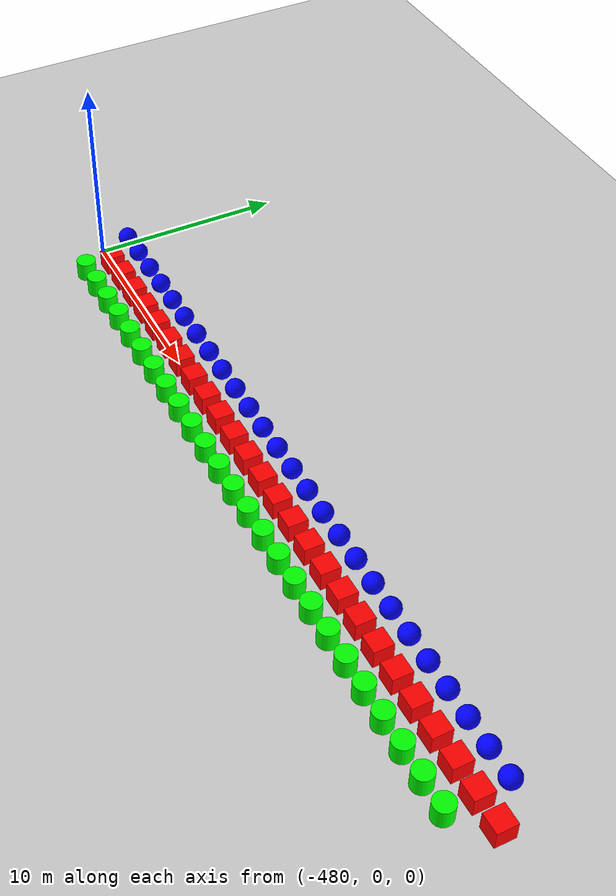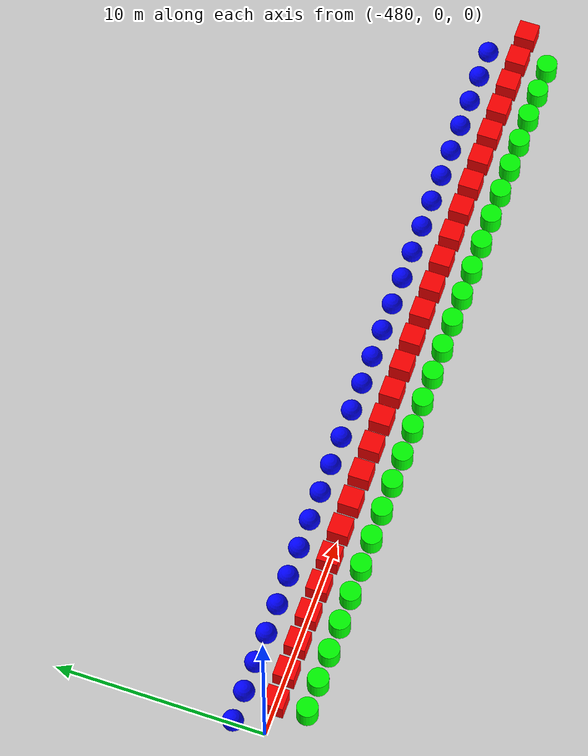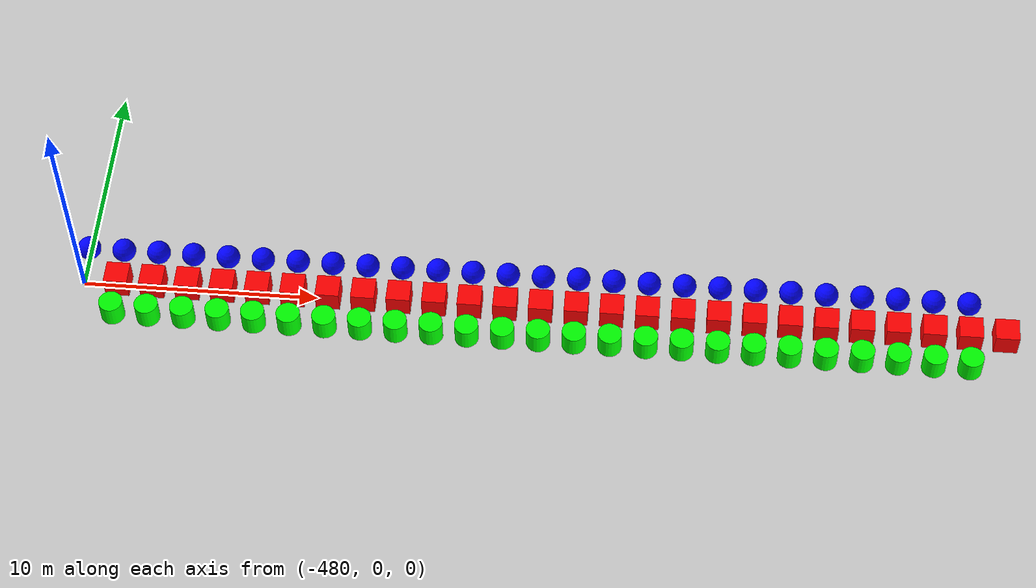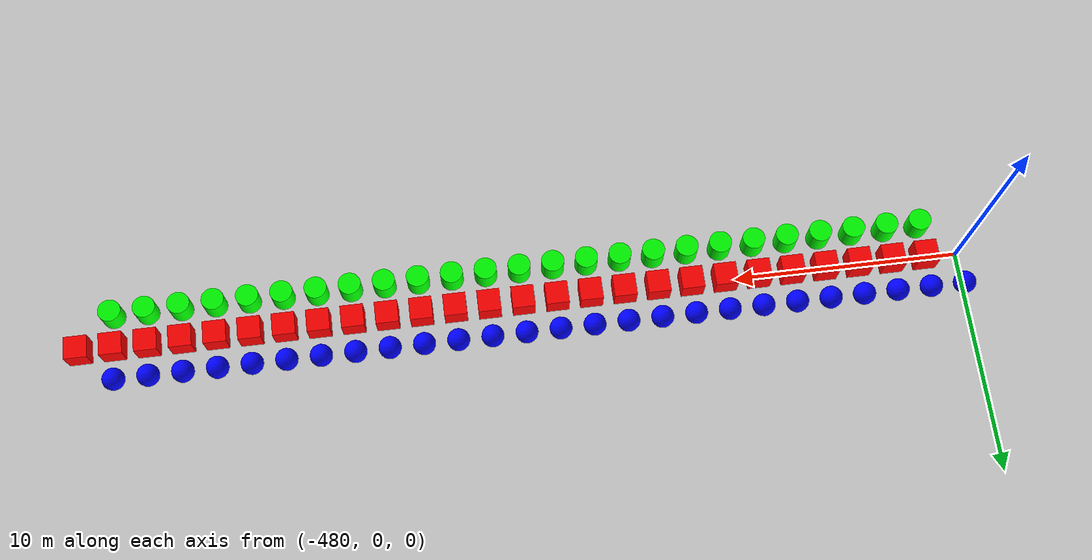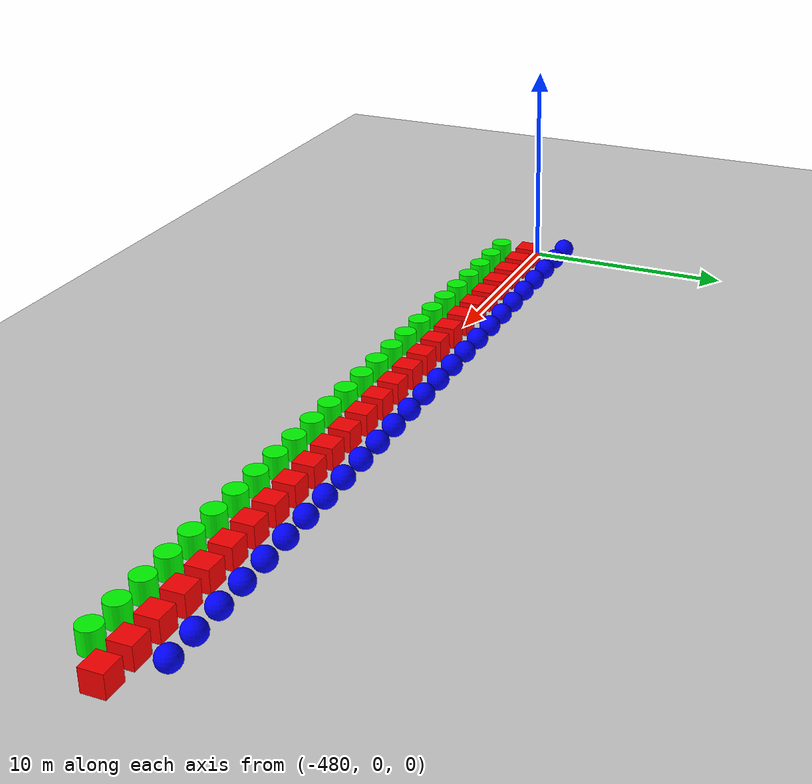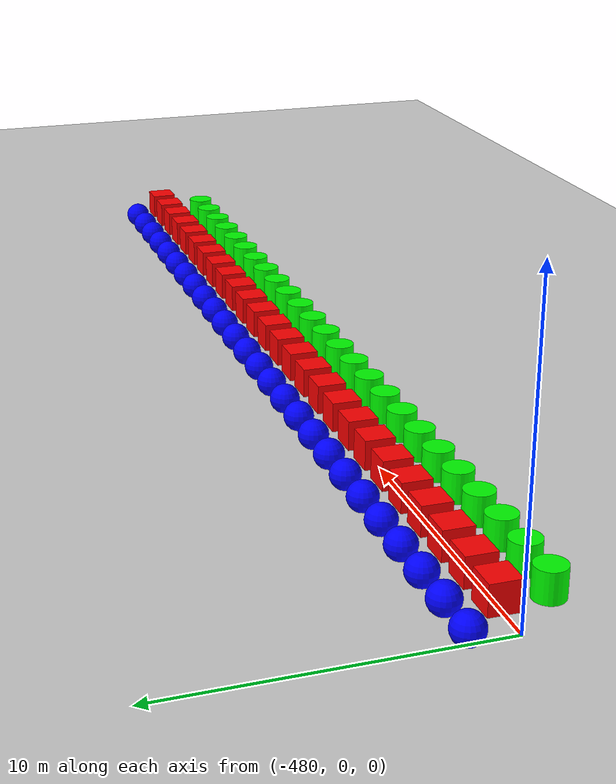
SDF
<sdf version="1.6">
 <world name="shapes">
  <model name="ground_plane">
   <static>true</static>
   <link name="link">
    <collision name="collision">
     <geometry><plane><normal>0 0 1</normal><size>100 100</size></plane></geometry>
    </collision>
    <visual name="visual">
     <geometry><plane><normal>0 0 1</normal><size>100 100</size></plane></geometry>
     <material>
      <ambient>0.8 0.8 0.8 1</ambient>
      <diffuse>0.8 0.8 0.8 1</diffuse>
      <specular>0.8 0.8 0.8 1</specular>
     </material>
    </visual>
   </link>
  </model>
  <model name="sphere_180">
   <static>false</static>
   <pose>-480.0 1.5 0.5 0 0 0</pose>
   <link name="sphere_link">
    <inertial>
     <inertia><ixx>3</ixx><ixy>0</ixy><ixz>0</ixz><iyy>3</iyy><iyz>0</iyz><izz>3</izz></inertia>
     <mass>3.0</mass>
    </inertial>
    <collision name="sphere_collision"><geometry><sphere><radius>0.5</radius></sphere></geometry></collision>
    <visual name="sphere_visual">
     <geometry><sphere><radius>0.5</radius></sphere></geometry>
     <material><ambient>0 0 1 1</ambient><diffuse>0 0 1 1</diffuse><specular>0 0 1 1</specular></material>
    </visual>
   </link>
  </model>
  <model name="box_181">
   <static>false</static>
   <pose>-478.5 0 0.5 0 0 0</pose>
   <link name="box_link">
    <inertial>
     <inertia><ixx>1</ixx><ixy>0</ixy><ixz>0</ixz><iyy>1</iyy><iyz>0</iyz><izz>1</izz></inertia>
     <mass>1.0</mass>
    </inertial>
    <collision name="box_collision"><geometry><box><size>1 1 1</size></box></geometry></collision>
    <visual name="box_visual">
     <geometry><box><size>1 1 1</size></box></geometry>
     <material><ambient>1 0 0 1</ambient><diffuse>1 0 0 1</diffuse><specular>1 0 0 1</specular></material>
    </visual>
   </link>
  </model>
  <model name="cylinder_181">
   <static>false</static>
   <pose>-478.5 -1.5 0.5 0 0 0</pose>
   <link name="cylinder_link">
    <inertial>
     <inertia><ixx>2</ixx><ixy>0</ixy><ixz>0</ixz><iyy>2</iyy><iyz>0</iyz><izz>2</izz></inertia>
     <mass>2.0</mass>
    </inertial>
    <collision name="cylinder_collision">
     <geometry><cylinder><radius>0.5</radius><length>1.0</length></cylinder></geometry>
    </collision>
    <visual name="cylinder_visual">
     <geometry><cylinder><radius>0.5</radius><length>1.0</length></cylinder></geometry>
     <material><ambient>0 1 0 1</ambient><diffuse>0 1 0 1</diffuse><specular>0 1 0 1</specular></material>
    </visual>
   </link>
  </model>
  <model name="sphere_181">
   <static>false</static>
   <pose>-478.5 1.5 0.5 0 0 0</pose>
   <link name="sphere_link">
    <inertial>
     <inertia><ixx>3</ixx><ixy>0</ixy><ixz>0</ixz><iyy>3</iyy><iyz>0</iyz><izz>3</izz></inertia>
     <mass>3.0</mass>
    </inertial>
    <collision name="sphere_collision"><geometry><sphere><radius>0.5</radius></sphere></geometry></collision>
    <visual name="sphere_visual">
     <geometry><sphere><radius>0.5</radius></sphere></geometry>
     <material><ambient>0 0 1 1</ambient><diffuse>0 0 1 1</diffuse><specular>0 0 1 1</specular></material>
    </visual>
   </link>
  </model>
  <model name="box_182">
   <static>false</static>
   <pose>-477.0 0 0.5 0 0 0</pose>
   <link name="box_link">
    <inertial>
     <inertia><ixx>1</ixx><ixy>0</ixy><ixz>0</ixz><iyy>1</iyy><iyz>0</iyz><izz>1</izz></inertia>
     <mass>1.0</mass>
    </inertial>
    <collision name="box_collision"><geometry><box><size>1 1 1</size></box></geometry></collision>
    <visual name="box_visual">
     <geometry><box><size>1 1 1</size></box></geometry>
     <material><ambient>1 0 0 1</ambient><diffuse>1 0 0 1</diffuse><specular>1 0 0 1</specular></material>
    </visual>
   </link>
  </model>
  <model name="cylinder_182">
   <static>false</static>
   <pose>-477.0 -1.5 0.5 0 0 0</pose>
   <link name="cylinder_link">
    <inertial>
     <inertia><ixx>2</ixx><ixy>0</ixy><ixz>0</ixz><iyy>2</iyy><iyz>0</iyz><izz>2</izz></inertia>
     <mass>2.0</mass>
    </inertial>
    <collision name="cylinder_collision">
     <geometry><cylinder><radius>0.5</radius><length>1.0</length></cylinder></geometry>
    </collision>
    <visual name="cylinder_visual">
     <geometry><cylinder><radius>0.5</radius><length>1.0</length></cylinder></geometry>
     <material><ambient>0 1 0 1</ambient><diffuse>0 1 0 1</diffuse><specular>0 1 0 1</specular></material>
    </visual>
   </link>
  </model>
  <model name="sphere_182">
   <static>false</static>
   <pose>-477.0 1.5 0.5 0 0 0</pose>
   <link name="sphere_link">
    <inertial>
     <inertia><ixx>3</ixx><ixy>0</ixy><ixz>0</ixz><iyy>3</iyy><iyz>0</iyz><izz>3</izz></inertia>
     <mass>3.0</mass>
    </inertial>
    <collision name="sphere_collision"><geometry><sphere><radius>0.5</radius></sphere></geometry></collision>
    <visual name="sphere_visual">
     <geometry><sphere><radius>0.5</radius></sphere></geometry>
     <material><ambient>0 0 1 1</ambient><diffuse>0 0 1 1</diffuse><specular>0 0 1 1</specular></material>
    </visual>
   </link>
  </model>
  <model name="box_183">
   <static>false</static>
   <pose>-475.5 0 0.5 0 0 0</pose>
   <link name="box_link">
    <inertial>
     <inertia><ixx>1</ixx><ixy>0</ixy><ixz>0</ixz><iyy>1</iyy><iyz>0</iyz><izz>1</izz></inertia>
     <mass>1.0</mass>
    </inertial>
    <collision name="box_collision"><geometry><box><size>1 1 1</size></box></geometry></collision>
    <visual name="box_visual">
     <geometry><box><size>1 1 1</size></box></geometry>
     <material><ambient>1 0 0 1</ambient><diffuse>1 0 0 1</diffuse><specular>1 0 0 1</specular></material>
    </visual>
   </link>
  </model>
  <model name="cylinder_183">
   <static>false</static>
   <pose>-475.5 -1.5 0.5 0 0 0</pose>
   <link name="cylinder_link">
    <inertial>
     <inertia><ixx>2</ixx><ixy>0</ixy><ixz>0</ixz><iyy>2</iyy><iyz>0</iyz><izz>2</izz></inertia>
     <mass>2.0</mass>
    </inertial>
    <collision name="cylinder_collision">
     <geometry><cylinder><radius>0.5</radius><length>1.0</length></cylinder></geometry>
    </collision>
    <visual name="cylinder_visual">
     <geometry><cylinder><radius>0.5</radius><length>1.0</length></cylinder></geometry>
     <material><ambient>0 1 0 1</ambient><diffuse>0 1 0 1</diffuse><specular>0 1 0 1</specular></material>
    </visual>
   </link>
  </model>
  <model name="sphere_183">
   <static>false</static>
   <pose>-475.5 1.5 0.5 0 0 0</pose>
   <link name="sphere_link">
    <inertial>
     <inertia><ixx>3</ixx><ixy>0</ixy><ixz>0</ixz><iyy>3</iyy><iyz>0</iyz><izz>3</izz></inertia>
     <mass>3.0</mass>
    </inertial>
    <collision name="sphere_collision"><geometry><sphere><radius>0.5</radius></sphere></geometry></collision>
    <visual name="sphere_visual">
     <geometry><sphere><radius>0.5</radius></sphere></geometry>
     <material><ambient>0 0 1 1</ambient><diffuse>0 0 1 1</diffuse><specular>0 0 1 1</specular></material>
    </visual>
   </link>
  </model>
  <model name="box_184">
   <static>false</static>
   <pose>-474.0 0 0.5 0 0 0</pose>
   <link name="box_link">
    <inertial>
     <inertia><ixx>1</ixx><ixy>0</ixy><ixz>0</ixz><iyy>1</iyy><iyz>0</iyz><izz>1</izz></inertia>
     <mass>1.0</mass>
    </inertial>
    <collision name="box_collision"><geometry><box><size>1 1 1</size></box></geometry></collision>
    <visual name="box_visual">
     <geometry><box><size>1 1 1</size></box></geometry>
     <material><ambient>1 0 0 1</ambient><diffuse>1 0 0 1</diffuse><specular>1 0 0 1</specular></material>
    </visual>
   </link>
  </model>
  <model name="cylinder_184">
   <static>false</static>
   <pose>-474.0 -1.5 0.5 0 0 0</pose>
   <link name="cylinder_link">
    <inertial>
     <inertia><ixx>2</ixx><ixy>0</ixy><ixz>0</ixz><iyy>2</iyy><iyz>0</iyz><izz>2</izz></inertia>
     <mass>2.0</mass>
    </inertial>
    <collision name="cylinder_collision">
     <geometry><cylinder><radius>0.5</radius><length>1.0</length></cylinder></geometry>
    </collision>
    <visual name="cylinder_visual">
     <geometry><cylinder><radius>0.5</radius><length>1.0</length></cylinder></geometry>
     <material><ambient>0 1 0 1</ambient><diffuse>0 1 0 1</diffuse><specular>0 1 0 1</specular></material>
    </visual>
   </link>
  </model>
  <model name="sphere_184">
   <static>false</static>
   <pose>-474.0 1.5 0.5 0 0 0</pose>
   <link name="sphere_link">
    <inertial>
     <inertia><ixx>3</ixx><ixy>0</ixy><ixz>0</ixz><iyy>3</iyy><iyz>0</iyz><izz>3</izz></inertia>
     <mass>3.0</mass>
    </inertial>
    <collision name="sphere_collision"><geometry><sphere><radius>0.5</radius></sphere></geometry></collision>
    <visual name="sphere_visual">
     <geometry><sphere><radius>0.5</radius></sphere></geometry>
     <material><ambient>0 0 1 1</ambient><diffuse>0 0 1 1</diffuse><specular>0 0 1 1</specular></material>
    </visual>
   </link>
  </model>
  <model name="box_185">
   <static>false</static>
   <pose>-472.5 0 0.5 0 0 0</pose>
   <link name="box_link">
    <inertial>
     <inertia><ixx>1</ixx><ixy>0</ixy><ixz>0</ixz><iyy>1</iyy><iyz>0</iyz><izz>1</izz></inertia>
     <mass>1.0</mass>
    </inertial>
    <collision name="box_collision"><geometry><box><size>1 1 1</size></box></geometry></collision>
    <visual name="box_visual">
     <geometry><box><size>1 1 1</size></box></geometry>
     <material><ambient>1 0 0 1</ambient><diffuse>1 0 0 1</diffuse><specular>1 0 0 1</specular></material>
    </visual>
   </link>
  </model>
  <model name="cylinder_185">
   <static>false</static>
   <pose>-472.5 -1.5 0.5 0 0 0</pose>
   <link name="cylinder_link">
    <inertial>
     <inertia><ixx>2</ixx><ixy>0</ixy><ixz>0</ixz><iyy>2</iyy><iyz>0</iyz><izz>2</izz></inertia>
     <mass>2.0</mass>
    </inertial>
    <collision name="cylinder_collision">
     <geometry><cylinder><radius>0.5</radius><length>1.0</length></cylinder></geometry>
    </collision>
    <visual name="cylinder_visual">
     <geometry><cylinder><radius>0.5</radius><length>1.0</length></cylinder></geometry>
     <material><ambient>0 1 0 1</ambient><diffuse>0 1 0 1</diffuse><specular>0 1 0 1</specular></material>
    </visual>
   </link>
  </model>
  <model name="sphere_185">
   <static>false</static>
   <pose>-472.5 1.5 0.5 0 0 0</pose>
   <link name="sphere_link">
    <inertial>
     <inertia><ixx>3</ixx><ixy>0</ixy><ixz>0</ixz><iyy>3</iyy><iyz>0</iyz><izz>3</izz></inertia>
     <mass>3.0</mass>
    </inertial>
    <collision name="sphere_collision"><geometry><sphere><radius>0.5</radius></sphere></geometry></collision>
    <visual name="sphere_visual">
     <geometry><sphere><radius>0.5</radius></sphere></geometry>
     <material><ambient>0 0 1 1</ambient><diffuse>0 0 1 1</diffuse><specular>0 0 1 1</specular></material>
    </visual>
   </link>
  </model>
  <model name="box_186">
   <static>false</static>
   <pose>-471.0 0 0.5 0 0 0</pose>
   <link name="box_link">
    <inertial>
     <inertia><ixx>1</ixx><ixy>0</ixy><ixz>0</ixz><iyy>1</iyy><iyz>0</iyz><izz>1</izz></inertia>
     <mass>1.0</mass>
    </inertial>
    <collision name="box_collision"><geometry><box><size>1 1 1</size></box></geometry></collision>
    <visual name="box_visual">
     <geometry><box><size>1 1 1</size></box></geometry>
     <material><ambient>1 0 0 1</ambient><diffuse>1 0 0 1</diffuse><specular>1 0 0 1</specular></material>
    </visual>
   </link>
  </model>
  <model name="cylinder_186">
   <static>false</static>
   <pose>-471.0 -1.5 0.5 0 0 0</pose>
   <link name="cylinder_link">
    <inertial>
     <inertia><ixx>2</ixx><ixy>0</ixy><ixz>0</ixz><iyy>2</iyy><iyz>0</iyz><izz>2</izz></inertia>
     <mass>2.0</mass>
    </inertial>
    <collision name="cylinder_collision">
     <geometry><cylinder><radius>0.5</radius><length>1.0</length></cylinder></geometry>
    </collision>
    <visual name="cylinder_visual">
     <geometry><cylinder><radius>0.5</radius><length>1.0</length></cylinder></geometry>
     <material><ambient>0 1 0 1</ambient><diffuse>0 1 0 1</diffuse><specular>0 1 0 1</specular></material>
    </visual>
   </link>
  </model>
  <model name="sphere_186">
   <static>false</static>
   <pose>-471.0 1.5 0.5 0 0 0</pose>
   <link name="sphere_link">
    <inertial>
     <inertia><ixx>3</ixx><ixy>0</ixy><ixz>0</ixz><iyy>3</iyy><iyz>0</iyz><izz>3</izz></inertia>
     <mass>3.0</mass>
    </inertial>
    <collision name="sphere_collision"><geometry><sphere><radius>0.5</radius></sphere></geometry></collision>
    <visual name="sphere_visual">
     <geometry><sphere><radius>0.5</radius></sphere></geometry>
     <material><ambient>0 0 1 1</ambient><diffuse>0 0 1 1</diffuse><specular>0 0 1 1</specular></material>
    </visual>
   </link>
  </model>
  <model name="box_187">
   <static>false</static>
   <pose>-469.5 0 0.5 0 0 0</pose>
   <link name="box_link">
    <inertial>
     <inertia><ixx>1</ixx><ixy>0</ixy><ixz>0</ixz><iyy>1</iyy><iyz>0</iyz><izz>1</izz></inertia>
     <mass>1.0</mass>
    </inertial>
    <collision name="box_collision"><geometry><box><size>1 1 1</size></box></geometry></collision>
    <visual name="box_visual">
     <geometry><box><size>1 1 1</size></box></geometry>
     <material><ambient>1 0 0 1</ambient><diffuse>1 0 0 1</diffuse><specular>1 0 0 1</specular></material>
    </visual>
   </link>
  </model>
  <model name="cylinder_187">
   <static>false</static>
   <pose>-469.5 -1.5 0.5 0 0 0</pose>
   <link name="cylinder_link">
    <inertial>
     <inertia><ixx>2</ixx><ixy>0</ixy><ixz>0</ixz><iyy>2</iyy><iyz>0</iyz><izz>2</izz></inertia>
     <mass>2.0</mass>
    </inertial>
    <collision name="cylinder_collision">
     <geometry><cylinder><radius>0.5</radius><length>1.0</length></cylinder></geometry>
    </collision>
    <visual name="cylinder_visual">
     <geometry><cylinder><radius>0.5</radius><length>1.0</length></cylinder></geometry>
     <material><ambient>0 1 0 1</ambient><diffuse>0 1 0 1</diffuse><specular>0 1 0 1</specular></material>
    </visual>
   </link>
  </model>
  <model name="sphere_187">
   <static>false</static>
   <pose>-469.5 1.5 0.5 0 0 0</pose>
   <link name="sphere_link">
    <inertial>
     <inertia><ixx>3</ixx><ixy>0</ixy><ixz>0</ixz><iyy>3</iyy><iyz>0</iyz><izz>3</izz></inertia>
     <mass>3.0</mass>
    </inertial>
    <collision name="sphere_collision"><geometry><sphere><radius>0.5</radius></sphere></geometry></collision>
    <visual name="sphere_visual">
     <geometry><sphere><radius>0.5</radius></sphere></geometry>
     <material><ambient>0 0 1 1</ambient><diffuse>0 0 1 1</diffuse><specular>0 0 1 1</specular></material>
    </visual>
   </link>
  </model>
  <model name="box_188">
   <static>false</static>
   <pose>-468.0 0 0.5 0 0 0</pose>
   <link name="box_link">
    <inertial>
     <inertia><ixx>1</ixx><ixy>0</ixy><ixz>0</ixz><iyy>1</iyy><iyz>0</iyz><izz>1</izz></inertia>
     <mass>1.0</mass>
    </inertial>
    <collision name="box_collision"><geometry><box><size>1 1 1</size></box></geometry></collision>
    <visual name="box_visual">
     <geometry><box><size>1 1 1</size></box></geometry>
     <material><ambient>1 0 0 1</ambient><diffuse>1 0 0 1</diffuse><specular>1 0 0 1</specular></material>
    </visual>
   </link>
  </model>
  <model name="cylinder_188">
   <static>false</static>
   <pose>-468.0 -1.5 0.5 0 0 0</pose>
   <link name="cylinder_link">
    <inertial>
     <inertia><ixx>2</ixx><ixy>0</ixy><ixz>0</ixz><iyy>2</iyy><iyz>0</iyz><izz>2</izz></inertia>
     <mass>2.0</mass>
    </inertial>
    <collision name="cylinder_collision">
     <geometry><cylinder><radius>0.5</radius><length>1.0</length></cylinder></geometry>
    </collision>
    <visual name="cylinder_visual">
     <geometry><cylinder><radius>0.5</radius><length>1.0</length></cylinder></geometry>
     <material><ambient>0 1 0 1</ambient><diffuse>0 1 0 1</diffuse><specular>0 1 0 1</specular></material>
    </visual>
   </link>
  </model>
  <model name="sphere_188">
   <static>false</static>
   <pose>-468.0 1.5 0.5 0 0 0</pose>
   <link name="sphere_link">
    <inertial>
     <inertia><ixx>3</ixx><ixy>0</ixy><ixz>0</ixz><iyy>3</iyy><iyz>0</iyz><izz>3</izz></inertia>
     <mass>3.0</mass>
    </inertial>
    <collision name="sphere_collision"><geometry><sphere><radius>0.5</radius></sphere></geometry></collision>
    <visual name="sphere_visual">
     <geometry><sphere><radius>0.5</radius></sphere></geometry>
     <material><ambient>0 0 1 1</ambient><diffuse>0 0 1 1</diffuse><specular>0 0 1 1</specular></material>
    </visual>
   </link>
  </model>
  <model name="box_189">
   <static>false</static>
   <pose>-466.5 0 0.5 0 0 0</pose>
   <link name="box_link">
    <inertial>
     <inertia><ixx>1</ixx><ixy>0</ixy><ixz>0</ixz><iyy>1</iyy><iyz>0</iyz><izz>1</izz></inertia>
     <mass>1.0</mass>
    </inertial>
    <collision name="box_collision"><geometry><box><size>1 1 1</size></box></geometry></collision>
    <visual name="box_visual">
     <geometry><box><size>1 1 1</size></box></geometry>
     <material><ambient>1 0 0 1</ambient><diffuse>1 0 0 1</diffuse><specular>1 0 0 1</specular></material>
    </visual>
   </link>
  </model>
  <model name="cylinder_189">
   <static>false</static>
   <pose>-466.5 -1.5 0.5 0 0 0</pose>
   <link name="cylinder_link">
    <inertial>
     <inertia><ixx>2</ixx><ixy>0</ixy><ixz>0</ixz><iyy>2</iyy><iyz>0</iyz><izz>2</izz></inertia>
     <mass>2.0</mass>
    </inertial>
    <collision name="cylinder_collision">
     <geometry><cylinder><radius>0.5</radius><length>1.0</length></cylinder></geometry>
    </collision>
    <visual name="cylinder_visual">
     <geometry><cylinder><radius>0.5</radius><length>1.0</length></cylinder></geometry>
     <material><ambient>0 1 0 1</ambient><diffuse>0 1 0 1</diffuse><specular>0 1 0 1</specular></material>
    </visual>
   </link>
  </model>
  <model name="sphere_189">
   <static>false</static>
   <pose>-466.5 1.5 0.5 0 0 0</pose>
   <link name="sphere_link">
    <inertial>
     <inertia><ixx>3</ixx><ixy>0</ixy><ixz>0</ixz><iyy>3</iyy><iyz>0</iyz><izz>3</izz></inertia>
     <mass>3.0</mass>
    </inertial>
    <collision name="sphere_collision"><geometry><sphere><radius>0.5</radius></sphere></geometry></collision>
    <visual name="sphere_visual">
     <geometry><sphere><radius>0.5</radius></sphere></geometry>
     <material><ambient>0 0 1 1</ambient><diffuse>0 0 1 1</diffuse><specular>0 0 1 1</specular></material>
    </visual>
   </link>
  </model>
  <model name="box_190">
   <static>false</static>
   <pose>-465.0 0 0.5 0 0 0</pose>
   <link name="box_link">
    <inertial>
     <inertia><ixx>1</ixx><ixy>0</ixy><ixz>0</ixz><iyy>1</iyy><iyz>0</iyz><izz>1</izz></inertia>
     <mass>1.0</mass>
    </inertial>
    <collision name="box_collision"><geometry><box><size>1 1 1</size></box></geometry></collision>
    <visual name="box_visual">
     <geometry><box><size>1 1 1</size></box></geometry>
     <material><ambient>1 0 0 1</ambient><diffuse>1 0 0 1</diffuse><specular>1 0 0 1</specular></material>
    </visual>
   </link>
  </model>
  <model name="cylinder_190">
   <static>false</static>
   <pose>-465.0 -1.5 0.5 0 0 0</pose>
   <link name="cylinder_link">
    <inertial>
     <inertia><ixx>2</ixx><ixy>0</ixy><ixz>0</ixz><iyy>2</iyy><iyz>0</iyz><izz>2</izz></inertia>
     <mass>2.0</mass>
    </inertial>
    <collision name="cylinder_collision">
     <geometry><cylinder><radius>0.5</radius><length>1.0</length></cylinder></geometry>
    </collision>
    <visual name="cylinder_visual">
     <geometry><cylinder><radius>0.5</radius><length>1.0</length></cylinder></geometry>
     <material><ambient>0 1 0 1</ambient><diffuse>0 1 0 1</diffuse><specular>0 1 0 1</specular></material>
    </visual>
   </link>
  </model>
  <model name="sphere_190">
   <static>false</static>
   <pose>-465.0 1.5 0.5 0 0 0</pose>
   <link name="sphere_link">
    <inertial>
     <inertia><ixx>3</ixx><ixy>0</ixy><ixz>0</ixz><iyy>3</iyy><iyz>0</iyz><izz>3</izz></inertia>
     <mass>3.0</mass>
    </inertial>
    <collision name="sphere_collision"><geometry><sphere><radius>0.5</radius></sphere></geometry></collision>
    <visual name="sphere_visual">
     <geometry><sphere><radius>0.5</radius></sphere></geometry>
     <material><ambient>0 0 1 1</ambient><diffuse>0 0 1 1</diffuse><specular>0 0 1 1</specular></material>
    </visual>
   </link>
  </model>
  <model name="box_191">
   <static>false</static>
   <pose>-463.5 0 0.5 0 0 0</pose>
   <link name="box_link">
    <inertial>
     <inertia><ixx>1</ixx><ixy>0</ixy><ixz>0</ixz><iyy>1</iyy><iyz>0</iyz><izz>1</izz></inertia>
     <mass>1.0</mass>
    </inertial>
    <collision name="box_collision"><geometry><box><size>1 1 1</size></box></geometry></collision>
    <visual name="box_visual">
     <geometry><box><size>1 1 1</size></box></geometry>
     <material><ambient>1 0 0 1</ambient><diffuse>1 0 0 1</diffuse><specular>1 0 0 1</specular></material>
    </visual>
   </link>
  </model>
  <model name="cylinder_191">
   <static>false</static>
   <pose>-463.5 -1.5 0.5 0 0 0</pose>
   <link name="cylinder_link">
    <inertial>
     <inertia><ixx>2</ixx><ixy>0</ixy><ixz>0</ixz><iyy>2</iyy><iyz>0</iyz><izz>2</izz></inertia>
     <mass>2.0</mass>
    </inertial>
    <collision name="cylinder_collision">
     <geometry><cylinder><radius>0.5</radius><length>1.0</length></cylinder></geometry>
    </collision>
    <visual name="cylinder_visual">
     <geometry><cylinder><radius>0.5</radius><length>1.0</length></cylinder></geometry>
     <material><ambient>0 1 0 1</ambient><diffuse>0 1 0 1</diffuse><specular>0 1 0 1</specular></material>
    </visual>
   </link>
  </model>
  <model name="sphere_191">
   <static>false</static>
   <pose>-463.5 1.5 0.5 0 0 0</pose>
   <link name="sphere_link">
    <inertial>
     <inertia><ixx>3</ixx><ixy>0</ixy><ixz>0</ixz><iyy>3</iyy><iyz>0</iyz><izz>3</izz></inertia>
     <mass>3.0</mass>
    </inertial>
    <collision name="sphere_collision"><geometry><sphere><radius>0.5</radius></sphere></geometry></collision>
    <visual name="sphere_visual">
     <geometry><sphere><radius>0.5</radius></sphere></geometry>
     <material><ambient>0 0 1 1</ambient><diffuse>0 0 1 1</diffuse><specular>0 0 1 1</specular></material>
    </visual>
   </link>
  </model>
  <model name="box_192">
   <static>false</static>
   <pose>-462.0 0 0.5 0 0 0</pose>
   <link name="box_link">
    <inertial>
     <inertia><ixx>1</ixx><ixy>0</ixy><ixz>0</ixz><iyy>1</iyy><iyz>0</iyz><izz>1</izz></inertia>
     <mass>1.0</mass>
    </inertial>
    <collision name="box_collision"><geometry><box><size>1 1 1</size></box></geometry></collision>
    <visual name="box_visual">
     <geometry><box><size>1 1 1</size></box></geometry>
     <material><ambient>1 0 0 1</ambient><diffuse>1 0 0 1</diffuse><specular>1 0 0 1</specular></material>
    </visual>
   </link>
  </model>
  <model name="cylinder_192">
   <static>false</static>
   <pose>-462.0 -1.5 0.5 0 0 0</pose>
   <link name="cylinder_link">
    <inertial>
     <inertia><ixx>2</ixx><ixy>0</ixy><ixz>0</ixz><iyy>2</iyy><iyz>0</iyz><izz>2</izz></inertia>
     <mass>2.0</mass>
    </inertial>
    <collision name="cylinder_collision">
     <geometry><cylinder><radius>0.5</radius><length>1.0</length></cylinder></geometry>
    </collision>
    <visual name="cylinder_visual">
     <geometry><cylinder><radius>0.5</radius><length>1.0</length></cylinder></geometry>
     <material><ambient>0 1 0 1</ambient><diffuse>0 1 0 1</diffuse><specular>0 1 0 1</specular></material>
    </visual>
   </link>
  </model>
  <model name="sphere_192">
   <static>false</static>
   <pose>-462.0 1.5 0.5 0 0 0</pose>
   <link name="sphere_link">
    <inertial>
     <inertia><ixx>3</ixx><ixy>0</ixy><ixz>0</ixz><iyy>3</iyy><iyz>0</iyz><izz>3</izz></inertia>
     <mass>3.0</mass>
    </inertial>
    <collision name="sphere_collision"><geometry><sphere><radius>0.5</radius></sphere></geometry></collision>
    <visual name="sphere_visual">
     <geometry><sphere><radius>0.5</radius></sphere></geometry>
     <material><ambient>0 0 1 1</ambient><diffuse>0 0 1 1</diffuse><specular>0 0 1 1</specular></material>
    </visual>
   </link>
  </model>
  <model name="box_193">
   <static>false</static>
   <pose>-460.5 0 0.5 0 0 0</pose>
   <link name="box_link">
    <inertial>
     <inertia><ixx>1</ixx><ixy>0</ixy><ixz>0</ixz><iyy>1</iyy><iyz>0</iyz><izz>1</izz></inertia>
     <mass>1.0</mass>
    </inertial>
    <collision name="box_collision"><geometry><box><size>1 1 1</size></box></geometry></collision>
    <visual name="box_visual">
     <geometry><box><size>1 1 1</size></box></geometry>
     <material><ambient>1 0 0 1</ambient><diffuse>1 0 0 1</diffuse><specular>1 0 0 1</specular></material>
    </visual>
   </link>
  </model>
  <model name="cylinder_193">
   <static>false</static>
   <pose>-460.5 -1.5 0.5 0 0 0</pose>
   <link name="cylinder_link">
    <inertial>
     <inertia><ixx>2</ixx><ixy>0</ixy><ixz>0</ixz><iyy>2</iyy><iyz>0</iyz><izz>2</izz></inertia>
     <mass>2.0</mass>
    </inertial>
    <collision name="cylinder_collision">
     <geometry><cylinder><radius>0.5</radius><length>1.0</length></cylinder></geometry>
    </collision>
    <visual name="cylinder_visual">
     <geometry><cylinder><radius>0.5</radius><length>1.0</length></cylinder></geometry>
     <material><ambient>0 1 0 1</ambient><diffuse>0 1 0 1</diffuse><specular>0 1 0 1</specular></material>
    </visual>
   </link>
  </model>
  <model name="sphere_193">
   <static>false</static>
   <pose>-460.5 1.5 0.5 0 0 0</pose>
   <link name="sphere_link">
    <inertial>
     <inertia><ixx>3</ixx><ixy>0</ixy><ixz>0</ixz><iyy>3</iyy><iyz>0</iyz><izz>3</izz></inertia>
     <mass>3.0</mass>
    </inertial>
    <collision name="sphere_collision"><geometry><sphere><radius>0.5</radius></sphere></geometry></collision>
    <visual name="sphere_visual">
     <geometry><sphere><radius>0.5</radius></sphere></geometry>
     <material><ambient>0 0 1 1</ambient><diffuse>0 0 1 1</diffuse><specular>0 0 1 1</specular></material>
    </visual>
   </link>
  </model>
  <model name="box_194">
   <static>false</static>
   <pose>-459.0 0 0.5 0 0 0</pose>
   <link name="box_link">
    <inertial>
     <inertia><ixx>1</ixx><ixy>0</ixy><ixz>0</ixz><iyy>1</iyy><iyz>0</iyz><izz>1</izz></inertia>
     <mass>1.0</mass>
    </inertial>
    <collision name="box_collision"><geometry><box><size>1 1 1</size></box></geometry></collision>
    <visual name="box_visual">
     <geometry><box><size>1 1 1</size></box></geometry>
     <material><ambient>1 0 0 1</ambient><diffuse>1 0 0 1</diffuse><specular>1 0 0 1</specular></material>
    </visual>
   </link>
  </model>
  <model name="cylinder_194">
   <static>false</static>
   <pose>-459.0 -1.5 0.5 0 0 0</pose>
   <link name="cylinder_link">
    <inertial>
     <inertia><ixx>2</ixx><ixy>0</ixy><ixz>0</ixz><iyy>2</iyy><iyz>0</iyz><izz>2</izz></inertia>
     <mass>2.0</mass>
    </inertial>
    <collision name="cylinder_collision">
     <geometry><cylinder><radius>0.5</radius><length>1.0</length></cylinder></geometry>
    </collision>
    <visual name="cylinder_visual">
     <geometry><cylinder><radius>0.5</radius><length>1.0</length></cylinder></geometry>
     <material><ambient>0 1 0 1</ambient><diffuse>0 1 0 1</diffuse><specular>0 1 0 1</specular></material>
    </visual>
   </link>
  </model>
  <model name="sphere_194">
   <static>false</static>
   <pose>-459.0 1.5 0.5 0 0 0</pose>
   <link name="sphere_link">
    <inertial>
     <inertia><ixx>3</ixx><ixy>0</ixy><ixz>0</ixz><iyy>3</iyy><iyz>0</iyz><izz>3</izz></inertia>
     <mass>3.0</mass>
    </inertial>
    <collision name="sphere_collision"><geometry><sphere><radius>0.5</radius></sphere></geometry></collision>
    <visual name="sphere_visual">
     <geometry><sphere><radius>0.5</radius></sphere></geometry>
     <material><ambient>0 0 1 1</ambient><diffuse>0 0 1 1</diffuse><specular>0 0 1 1</specular></material>
    </visual>
   </link>
  </model>
  <model name="box_195">
   <static>false</static>
   <pose>-457.5 0 0.5 0 0 0</pose>
   <link name="box_link">
    <inertial>
     <inertia><ixx>1</ixx><ixy>0</ixy><ixz>0</ixz><iyy>1</iyy><iyz>0</iyz><izz>1</izz></inertia>
     <mass>1.0</mass>
    </inertial>
    <collision name="box_collision"><geometry><box><size>1 1 1</size></box></geometry></collision>
    <visual name="box_visual">
     <geometry><box><size>1 1 1</size></box></geometry>
     <material><ambient>1 0 0 1</ambient><diffuse>1 0 0 1</diffuse><specular>1 0 0 1</specular></material>
    </visual>
   </link>
  </model>
  <model name="cylinder_195">
   <static>false</static>
   <pose>-457.5 -1.5 0.5 0 0 0</pose>
   <link name="cylinder_link">
    <inertial>
     <inertia><ixx>2</ixx><ixy>0</ixy><ixz>0</ixz><iyy>2</iyy><iyz>0</iyz><izz>2</izz></inertia>
     <mass>2.0</mass>
    </inertial>
    <collision name="cylinder_collision">
     <geometry><cylinder><radius>0.5</radius><length>1.0</length></cylinder></geometry>
    </collision>
    <visual name="cylinder_visual">
     <geometry><cylinder><radius>0.5</radius><length>1.0</length></cylinder></geometry>
     <material><ambient>0 1 0 1</ambient><diffuse>0 1 0 1</diffuse><specular>0 1 0 1</specular></material>
    </visual>
   </link>
  </model>
  <model name="sphere_195">
   <static>false</static>
   <pose>-457.5 1.5 0.5 0 0 0</pose>
   <link name="sphere_link">
    <inertial>
     <inertia><ixx>3</ixx><ixy>0</ixy><ixz>0</ixz><iyy>3</iyy><iyz>0</iyz><izz>3</izz></inertia>
     <mass>3.0</mass>
    </inertial>
    <collision name="sphere_collision"><geometry><sphere><radius>0.5</radius></sphere></geometry></collision>
    <visual name="sphere_visual">
     <geometry><sphere><radius>0.5</radius></sphere></geometry>
     <material><ambient>0 0 1 1</ambient><diffuse>0 0 1 1</diffuse><specular>0 0 1 1</specular></material>
    </visual>
   </link>
  </model>
  <model name="box_196">
   <static>false</static>
   <pose>-456.0 0 0.5 0 0 0</pose>
   <link name="box_link">
    <inertial>
     <inertia><ixx>1</ixx><ixy>0</ixy><ixz>0</ixz><iyy>1</iyy><iyz>0</iyz><izz>1</izz></inertia>
     <mass>1.0</mass>
    </inertial>
    <collision name="box_collision"><geometry><box><size>1 1 1</size></box></geometry></collision>
    <visual name="box_visual">
     <geometry><box><size>1 1 1</size></box></geometry>
     <material><ambient>1 0 0 1</ambient><diffuse>1 0 0 1</diffuse><specular>1 0 0 1</specular></material>
    </visual>
   </link>
  </model>
  <model name="cylinder_196">
   <static>false</static>
   <pose>-456.0 -1.5 0.5 0 0 0</pose>
   <link name="cylinder_link">
    <inertial>
     <inertia><ixx>2</ixx><ixy>0</ixy><ixz>0</ixz><iyy>2</iyy><iyz>0</iyz><izz>2</izz></inertia>
     <mass>2.0</mass>
    </inertial>
    <collision name="cylinder_collision">
     <geometry><cylinder><radius>0.5</radius><length>1.0</length></cylinder></geometry>
    </collision>
    <visual name="cylinder_visual">
     <geometry><cylinder><radius>0.5</radius><length>1.0</length></cylinder></geometry>
     <material><ambient>0 1 0 1</ambient><diffuse>0 1 0 1</diffuse><specular>0 1 0 1</specular></material>
    </visual>
   </link>
  </model>
  <model name="sphere_196">
   <static>false</static>
   <pose>-456.0 1.5 0.5 0 0 0</pose>
   <link name="sphere_link">
    <inertial>
     <inertia><ixx>3</ixx><ixy>0</ixy><ixz>0</ixz><iyy>3</iyy><iyz>0</iyz><izz>3</izz></inertia>
     <mass>3.0</mass>
    </inertial>
    <collision name="sphere_collision"><geometry><sphere><radius>0.5</radius></sphere></geometry></collision>
    <visual name="sphere_visual">
     <geometry><sphere><radius>0.5</radius></sphere></geometry>
     <material><ambient>0 0 1 1</ambient><diffuse>0 0 1 1</diffuse><specular>0 0 1 1</specular></material>
    </visual>
   </link>
  </model>
  <model name="box_197">
   <static>false</static>
   <pose>-454.5 0 0.5 0 0 0</pose>
   <link name="box_link">
    <inertial>
     <inertia><ixx>1</ixx><ixy>0</ixy><ixz>0</ixz><iyy>1</iyy><iyz>0</iyz><izz>1</izz></inertia>
     <mass>1.0</mass>
    </inertial>
    <collision name="box_collision"><geometry><box><size>1 1 1</size></box></geometry></collision>
    <visual name="box_visual">
     <geometry><box><size>1 1 1</size></box></geometry>
     <material><ambient>1 0 0 1</ambient><diffuse>1 0 0 1</diffuse><specular>1 0 0 1</specular></material>
    </visual>
   </link>
  </model>
  <model name="cylinder_197">
   <static>false</static>
   <pose>-454.5 -1.5 0.5 0 0 0</pose>
   <link name="cylinder_link">
    <inertial>
     <inertia><ixx>2</ixx><ixy>0</ixy><ixz>0</ixz><iyy>2</iyy><iyz>0</iyz><izz>2</izz></inertia>
     <mass>2.0</mass>
    </inertial>
    <collision name="cylinder_collision">
     <geometry><cylinder><radius>0.5</radius><length>1.0</length></cylinder></geometry>
    </collision>
    <visual name="cylinder_visual">
     <geometry><cylinder><radius>0.5</radius><length>1.0</length></cylinder></geometry>
     <material><ambient>0 1 0 1</ambient><diffuse>0 1 0 1</diffuse><specular>0 1 0 1</specular></material>
    </visual>
   </link>
  </model>
  <model name="sphere_197">
   <static>false</static>
   <pose>-454.5 1.5 0.5 0 0 0</pose>
   <link name="sphere_link">
    <inertial>
     <inertia><ixx>3</ixx><ixy>0</ixy><ixz>0</ixz><iyy>3</iyy><iyz>0</iyz><izz>3</izz></inertia>
     <mass>3.0</mass>
    </inertial>
    <collision name="sphere_collision"><geometry><sphere><radius>0.5</radius></sphere></geometry></collision>
    <visual name="sphere_visual">
     <geometry><sphere><radius>0.5</radius></sphere></geometry>
     <material><ambient>0 0 1 1</ambient><diffuse>0 0 1 1</diffuse><specular>0 0 1 1</specular></material>
    </visual>
   </link>
  </model>
  <model name="box_198">
   <static>false</static>
   <pose>-453.0 0 0.5 0 0 0</pose>
   <link name="box_link">
    <inertial>
     <inertia><ixx>1</ixx><ixy>0</ixy><ixz>0</ixz><iyy>1</iyy><iyz>0</iyz><izz>1</izz></inertia>
     <mass>1.0</mass>
    </inertial>
    <collision name="box_collision"><geometry><box><size>1 1 1</size></box></geometry></collision>
    <visual name="box_visual">
     <geometry><box><size>1 1 1</size></box></geometry>
     <material><ambient>1 0 0 1</ambient><diffuse>1 0 0 1</diffuse><specular>1 0 0 1</specular></material>
    </visual>
   </link>
  </model>
  <model name="cylinder_198">
   <static>false</static>
   <pose>-453.0 -1.5 0.5 0 0 0</pose>
   <link name="cylinder_link">
    <inertial>
     <inertia><ixx>2</ixx><ixy>0</ixy><ixz>0</ixz><iyy>2</iyy><iyz>0</iyz><izz>2</izz></inertia>
     <mass>2.0</mass>
    </inertial>
    <collision name="cylinder_collision">
     <geometry><cylinder><radius>0.5</radius><length>1.0</length></cylinder></geometry>
    </collision>
    <visual name="cylinder_visual">
     <geometry><cylinder><radius>0.5</radius><length>1.0</length></cylinder></geometry>
     <material><ambient>0 1 0 1</ambient><diffuse>0 1 0 1</diffuse><specular>0 1 0 1</specular></material>
    </visual>
   </link>
  </model>
  <model name="sphere_198">
   <static>false</static>
   <pose>-453.0 1.5 0.5 0 0 0</pose>
   <link name="sphere_link">
    <inertial>
     <inertia><ixx>3</ixx><ixy>0</ixy><ixz>0</ixz><iyy>3</iyy><iyz>0</iyz><izz>3</izz></inertia>
     <mass>3.0</mass>
    </inertial>
    <collision name="sphere_collision"><geometry><sphere><radius>0.5</radius></sphere></geometry></collision>
    <visual name="sphere_visual">
     <geometry><sphere><radius>0.5</radius></sphere></geometry>
     <material><ambient>0 0 1 1</ambient><diffuse>0 0 1 1</diffuse><specular>0 0 1 1</specular></material>
    </visual>
   </link>
  </model>
  <model name="box_199">
   <static>false</static>
   <pose>-451.5 0 0.5 0 0 0</pose>
   <link name="box_link">
    <inertial>
     <inertia><ixx>1</ixx><ixy>0</ixy><ixz>0</ixz><iyy>1</iyy><iyz>0</iyz><izz>1</izz></inertia>
     <mass>1.0</mass>
    </inertial>
    <collision name="box_collision"><geometry><box><size>1 1 1</size></box></geometry></collision>
    <visual name="box_visual">
     <geometry><box><size>1 1 1</size></box></geometry>
     <material><ambient>1 0 0 1</ambient><diffuse>1 0 0 1</diffuse><specular>1 0 0 1</specular></material>
    </visual>
   </link>
  </model>
  <model name="cylinder_199">
   <static>false</static>
   <pose>-451.5 -1.5 0.5 0 0 0</pose>
   <link name="cylinder_link">
    <inertial>
     <inertia><ixx>2</ixx><ixy>0</ixy><ixz>0</ixz><iyy>2</iyy><iyz>0</iyz><izz>2</izz></inertia>
     <mass>2.0</mass>
    </inertial>
    <collision name="cylinder_collision">
     <geometry><cylinder><radius>0.5</radius><length>1.0</length></cylinder></geometry>
    </collision>
    <visual name="cylinder_visual">
     <geometry><cylinder><radius>0.5</radius><length>1.0</length></cylinder></geometry>
     <material><ambient>0 1 0 1</ambient><diffuse>0 1 0 1</diffuse><specular>0 1 0 1</specular></material>
    </visual>
   </link>
  </model>
  <model name="sphere_199">
   <static>false</static>
   <pose>-451.5 1.5 0.5 0 0 0</pose>
   <link name="sphere_link">
    <inertial>
     <inertia><ixx>3</ixx><ixy>0</ixy><ixz>0</ixz><iyy>3</iyy><iyz>0</iyz><izz>3</izz></inertia>
     <mass>3.0</mass>
    </inertial>
    <collision name="sphere_collision"><geometry><sphere><radius>0.5</radius></sphere></geometry></collision>
    <visual name="sphere_visual">
     <geometry><sphere><radius>0.5</radius></sphere></geometry>
     <material><ambient>0 0 1 1</ambient><diffuse>0 0 1 1</diffuse><specular>0 0 1 1</specular></material>
    </visual>
   </link>
  </model>
  <model name="box_200">
   <static>false</static>
   <pose>-450.0 0 0.5 0 0 0</pose>
   <link name="box_link">
    <inertial>
     <inertia><ixx>1</ixx><ixy>0</ixy><ixz>0</ixz><iyy>1</iyy><iyz>0</iyz><izz>1</izz></inertia>
     <mass>1.0</mass>
    </inertial>
    <collision name="box_collision"><geometry><box><size>1 1 1</size></box></geometry></collision>
    <visual name="box_visual">
     <geometry><box><size>1 1 1</size></box></geometry>
     <material><ambient>1 0 0 1</ambient><diffuse>1 0 0 1</diffuse><specular>1 0 0 1</specular></material>
    </visual>
   </link>
  </model>
  <model name="cylinder_200">
   <static>false</static>
   <pose>-450.0 -1.5 0.5 0 0 0</pose>
   <link name="cylinder_link">
    <inertial>
     <inertia><ixx>2</ixx><ixy>0</ixy><ixz>0</ixz><iyy>2</iyy><iyz>0</iyz><izz>2</izz></inertia>
     <mass>2.0</mass>
    </inertial>
    <collision name="cylinder_collision">
     <geometry><cylinder><radius>0.5</radius><length>1.0</length></cylinder></geometry>
    </collision>
    <visual name="cylinder_visual">
     <geometry><cylinder><radius>0.5</radius><length>1.0</length></cylinder></geometry>
     <material><ambient>0 1 0 1</ambient><diffuse>0 1 0 1</diffuse><specular>0 1 0 1</specular></material>
    </visual>
   </link>
  </model>
  <model name="sphere_200">
   <static>false</static>
   <pose>-450.0 1.5 0.5 0 0 0</pose>
   <link name="sphere_link">
    <inertial>
     <inertia><ixx>3</ixx><ixy>0</ixy><ixz>0</ixz><iyy>3</iyy><iyz>0</iyz><izz>3</izz></inertia>
     <mass>3.0</mass>
    </inertial>
    <collision name="sphere_collision"><geometry><sphere><radius>0.5</radius></sphere></geometry></collision>
    <visual name="sphere_visual">
     <geometry><sphere><radius>0.5</radius></sphere></geometry>
     <material><ambient>0 0 1 1</ambient><diffuse>0 0 1 1</diffuse><specular>0 0 1 1</specular></material>
    </visual>
   </link>
  </model>
  <model name="box_201">
   <static>false</static>
   <pose>-448.5 0 0.5 0 0 0</pose>
   <link name="box_link">
    <inertial>
     <inertia><ixx>1</ixx><ixy>0</ixy><ixz>0</ixz><iyy>1</iyy><iyz>0</iyz><izz>1</izz></inertia>
     <mass>1.0</mass>
    </inertial>
    <collision name="box_collision"><geometry><box><size>1 1 1</size></box></geometry></collision>
    <visual name="box_visual">
     <geometry><box><size>1 1 1</size></box></geometry>
     <material><ambient>1 0 0 1</ambient><diffuse>1 0 0 1</diffuse><specular>1 0 0 1</specular></material>
    </visual>
   </link>
  </model>
  <model name="cylinder_201">
   <static>false</static>
   <pose>-448.5 -1.5 0.5 0 0 0</pose>
   <link name="cylinder_link">
    <inertial>
     <inertia><ixx>2</ixx><ixy>0</ixy><ixz>0</ixz><iyy>2</iyy><iyz>0</iyz><izz>2</izz></inertia>
     <mass>2.0</mass>
    </inertial>
    <collision name="cylinder_collision">
     <geometry><cylinder><radius>0.5</radius><length>1.0</length></cylinder></geometry>
    </collision>
    <visual name="cylinder_visual">
     <geometry><cylinder><radius>0.5</radius><length>1.0</length></cylinder></geometry>
     <material><ambient>0 1 0 1</ambient><diffuse>0 1 0 1</diffuse><specular>0 1 0 1</specular></material>
    </visual>
   </link>
  </model>
  <model name="sphere_201">
   <static>false</static>
   <pose>-448.5 1.5 0.5 0 0 0</pose>
   <link name="sphere_link">
    <inertial>
     <inertia><ixx>3</ixx><ixy>0</ixy><ixz>0</ixz><iyy>3</iyy><iyz>0</iyz><izz>3</izz></inertia>
     <mass>3.0</mass>
    </inertial>
    <collision name="sphere_collision"><geometry><sphere><radius>0.5</radius></sphere></geometry></collision>
    <visual name="sphere_visual">
     <geometry><sphere><radius>0.5</radius></sphere></geometry>
     <material><ambient>0 0 1 1</ambient><diffuse>0 0 1 1</diffuse><specular>0 0 1 1</specular></material>
    </visual>
   </link>
  </model>
  <model name="box_202">
   <static>false</static>
   <pose>-447.0 0 0.5 0 0 0</pose>
   <link name="box_link">
    <inertial>
     <inertia><ixx>1</ixx><ixy>0</ixy><ixz>0</ixz><iyy>1</iyy><iyz>0</iyz><izz>1</izz></inertia>
     <mass>1.0</mass>
    </inertial>
    <collision name="box_collision"><geometry><box><size>1 1 1</size></box></geometry></collision>
    <visual name="box_visual">
     <geometry><box><size>1 1 1</size></box></geometry>
     <material><ambient>1 0 0 1</ambient><diffuse>1 0 0 1</diffuse><specular>1 0 0 1</specular></material>
    </visual>
   </link>
  </model>
  <model name="cylinder_202">
   <static>false</static>
   <pose>-447.0 -1.5 0.5 0 0 0</pose>
   <link name="cylinder_link">
    <inertial>
     <inertia><ixx>2</ixx><ixy>0</ixy><ixz>0</ixz><iyy>2</iyy><iyz>0</iyz><izz>2</izz></inertia>
     <mass>2.0</mass>
    </inertial>
    <collision name="cylinder_collision">
     <geometry><cylinder><radius>0.5</radius><length>1.0</length></cylinder></geometry>
    </collision>
    <visual name="cylinder_visual">
     <geometry><cylinder><radius>0.5</radius><length>1.0</length></cylinder></geometry>
     <material><ambient>0 1 0 1</ambient><diffuse>0 1 0 1</diffuse><specular>0 1 0 1</specular></material>
    </visual>
   </link>
  </model>
  <model name="sphere_202">
   <static>false</static>
   <pose>-447.0 1.5 0.5 0 0 0</pose>
   <link name="sphere_link">
    <inertial>
     <inertia><ixx>3</ixx><ixy>0</ixy><ixz>0</ixz><iyy>3</iyy><iyz>0</iyz><izz>3</izz></inertia>
     <mass>3.0</mass>
    </inertial>
    <collision name="sphere_collision"><geometry><sphere><radius>0.5</radius></sphere></geometry></collision>
    <visual name="sphere_visual">
     <geometry><sphere><radius>0.5</radius></sphere></geometry>
     <material><ambient>0 0 1 1</ambient><diffuse>0 0 1 1</diffuse><specular>0 0 1 1</specular></material>
    </visual>
   </link>
  </model>
  <model name="box_203">
   <static>false</static>
   <pose>-445.5 0 0.5 0 0 0</pose>
   <link name="box_link">
    <inertial>
     <inertia><ixx>1</ixx><ixy>0</ixy><ixz>0</ixz><iyy>1</iyy><iyz>0</iyz><izz>1</izz></inertia>
     <mass>1.0</mass>
    </inertial>
    <collision name="box_collision"><geometry><box><size>1 1 1</size></box></geometry></collision>
    <visual name="box_visual">
     <geometry><box><size>1 1 1</size></box></geometry>
     <material><ambient>1 0 0 1</ambient><diffuse>1 0 0 1</diffuse><specular>1 0 0 1</specular></material>
    </visual>
   </link>
  </model>
  <model name="cylinder_203">
   <static>false</static>
   <pose>-445.5 -1.5 0.5 0 0 0</pose>
   <link name="cylinder_link">
    <inertial>
     <inertia><ixx>2</ixx><ixy>0</ixy><ixz>0</ixz><iyy>2</iyy><iyz>0</iyz><izz>2</izz></inertia>
     <mass>2.0</mass>
    </inertial>
    <collision name="cylinder_collision">
     <geometry><cylinder><radius>0.5</radius><length>1.0</length></cylinder></geometry>
    </collision>
    <visual name="cylinder_visual">
     <geometry><cylinder><radius>0.5</radius><length>1.0</length></cylinder></geometry>
     <material><ambient>0 1 0 1</ambient><diffuse>0 1 0 1</diffuse><specular>0 1 0 1</specular></material>
    </visual>
   </link>
  </model>
  <model name="sphere_203">
   <static>false</static>
   <pose>-445.5 1.5 0.5 0 0 0</pose>
   <link name="sphere_link">
    <inertial>
     <inertia><ixx>3</ixx><ixy>0</ixy><ixz>0</ixz><iyy>3</iyy><iyz>0</iyz><izz>3</izz></inertia>
     <mass>3.0</mass>
    </inertial>
    <collision name="sphere_collision"><geometry><sphere><radius>0.5</radius></sphere></geometry></collision>
    <visual name="sphere_visual">
     <geometry><sphere><radius>0.5</radius></sphere></geometry>
     <material><ambient>0 0 1 1</ambient><diffuse>0 0 1 1</diffuse><specular>0 0 1 1</specular></material>
    </visual>
   </link>
  </model>
  <model name="box_204">
   <static>false</static>
   <pose>-444.0 0 0.5 0 0 0</pose>
   <link name="box_link">
    <inertial>
     <inertia><ixx>1</ixx><ixy>0</ixy><ixz>0</ixz><iyy>1</iyy><iyz>0</iyz><izz>1</izz></inertia>
     <mass>1.0</mass>
    </inertial>
    <collision name="box_collision"><geometry><box><size>1 1 1</size></box></geometry></collision>
    <visual name="box_visual">
     <geometry><box><size>1 1 1</size></box></geometry>
     <material><ambient>1 0 0 1</ambient><diffuse>1 0 0 1</diffuse><specular>1 0 0 1</specular></material>
    </visual>
   </link>
  </model>
  <model name="cylinder_204">
   <static>false</static>
   <pose>-444.0 -1.5 0.5 0 0 0</pose>
   <link name="cylinder_link">
    <inertial>
     <inertia><ixx>2</ixx><ixy>0</ixy><ixz>0</ixz><iyy>2</iyy><iyz>0</iyz><izz>2</izz></inertia>
     <mass>2.0</mass>
    </inertial>
    <collision name="cylinder_collision">
     <geometry><cylinder><radius>0.5</radius><length>1.0</length></cylinder></geometry>
    </collision>
    <visual name="cylinder_visual">
     <geometry><cylinder><radius>0.5</radius><length>1.0</length></cylinder></geometry>
     <material><ambient>0 1 0 1</ambient><diffuse>0 1 0 1</diffuse><specular>0 1 0 1</specular></material>
    </visual>
   </link>
  </model>
  <model name="sphere_204">
   <static>false</static>
   <pose>-444.0 1.5 0.5 0 0 0</pose>
   <link name="sphere_link">
    <inertial>
     <inertia><ixx>3</ixx><ixy>0</ixy><ixz>0</ixz><iyy>3</iyy><iyz>0</iyz><izz>3</izz></inertia>
     <mass>3.0</mass>
    </inertial>
    <collision name="sphere_collision"><geometry><sphere><radius>0.5</radius></sphere></geometry></collision>
    <visual name="sphere_visual">
     <geometry><sphere><radius>0.5</radius></sphere></geometry>
     <material><ambient>0 0 1 1</ambient><diffuse>0 0 1 1</diffuse><specular>0 0 1 1</specular></material>
    </visual>
   </link>
  </model>
  <model name="box_205">
   <static>false</static>
   <pose>-442.5 0 0.5 0 0 0</pose>
   <link name="box_link">
    <inertial>
     <inertia><ixx>1</ixx><ixy>0</ixy><ixz>0</ixz><iyy>1</iyy><iyz>0</iyz><izz>1</izz></inertia>
     <mass>1.0</mass>
    </inertial>
    <collision name="box_collision"><geometry><box><size>1 1 1</size></box></geometry></collision>
    <visual name="box_visual">
     <geometry><box><size>1 1 1</size></box></geometry>
     <material><ambient>1 0 0 1</ambient><diffuse>1 0 0 1</diffuse><specular>1 0 0 1</specular></material>
    </visual>
   </link>
  </model>
  <model name="cylinder_205">
   <static>false</static>
   <pose>-442.5 -1.5 0.5 0 0 0</pose>
   <link name="cylinder_link">
    <inertial>
     <inertia><ixx>2</ixx><ixy>0</ixy><ixz>0</ixz><iyy>2</iyy><iyz>0</iyz><izz>2</izz></inertia>
     <mass>2.0</mass>
    </inertial>
    <collision name="cylinder_collision">
     <geometry><cylinder><radius>0.5</radius><length>1.0</length></cylinder></geometry>
    </collision>
    <visual name="cylinder_visual">
     <geometry><cylinder><radius>0.5</radius><length>1.0</length></cylinder></geometry>
     <material><ambient>0 1 0 1</ambient><diffuse>0 1 0 1</diffuse><specular>0 1 0 1</specular></material>
    </visual>
   </link>
  </model>
  <model name="sphere_205">
   <static>false</static>
   <pose>-442.5 1.5 0.5 0 0 0</pose>
   <link name="sphere_link">
    <inertial>
     <inertia><ixx>3</ixx><ixy>0</ixy><ixz>0</ixz><iyy>3</iyy><iyz>0</iyz><izz>3</izz></inertia>
     <mass>3.0</mass>
    </inertial>
    <collision name="sphere_collision"><geometry><sphere><radius>0.5</radius></sphere></geometry></collision>
    <visual name="sphere_visual">
     <geometry><sphere><radius>0.5</radius></sphere></geometry>
     <material><ambient>0 0 1 1</ambient><diffuse>0 0 1 1</diffuse><specular>0 0 1 1</specular></material>
    </visual>
   </link>
  </model>
  <model name="box_206">
   <static>false</static>
   <pose>-441.0 0 0.5 0 0 0</pose>
   <link name="box_link">
    <inertial>
     <inertia><ixx>1</ixx><ixy>0</ixy><ixz>0</ixz><iyy>1</iyy><iyz>0</iyz><izz>1</izz></inertia>
     <mass>1.0</mass>
    </inertial>
    <collision name="box_collision"><geometry><box><size>1 1 1</size></box></geometry></collision>
    <visual name="box_visual">
     <geometry><box><size>1 1 1</size></box></geometry>
     <material><ambient>1 0 0 1</ambient><diffuse>1 0 0 1</diffuse><specular>1 0 0 1</specular></material>
    </visual>
   </link>
  </model>
 </world>
</sdf>
